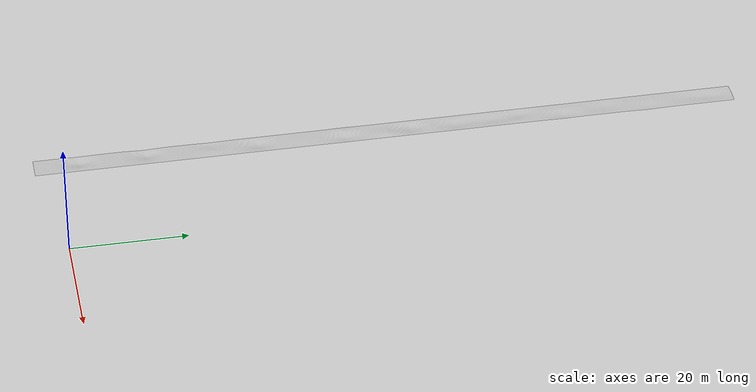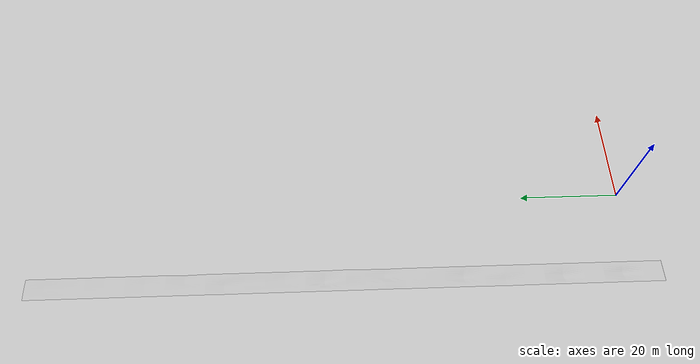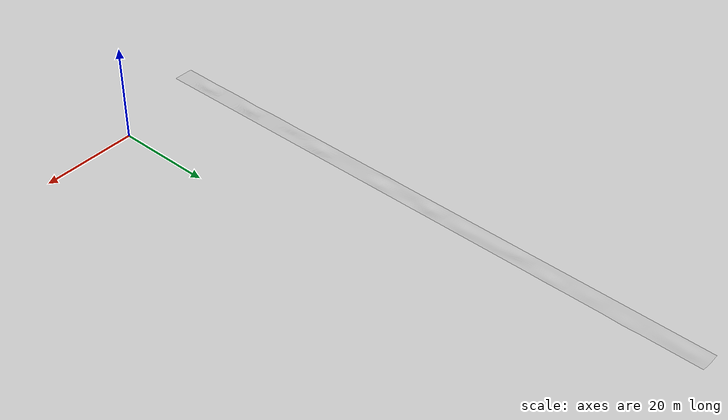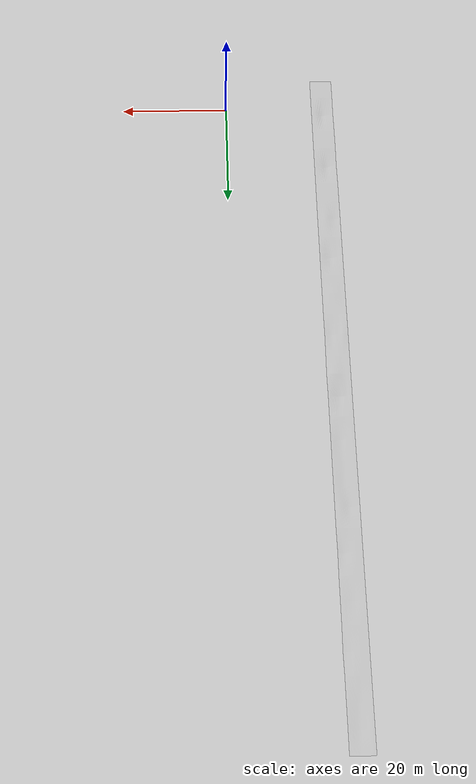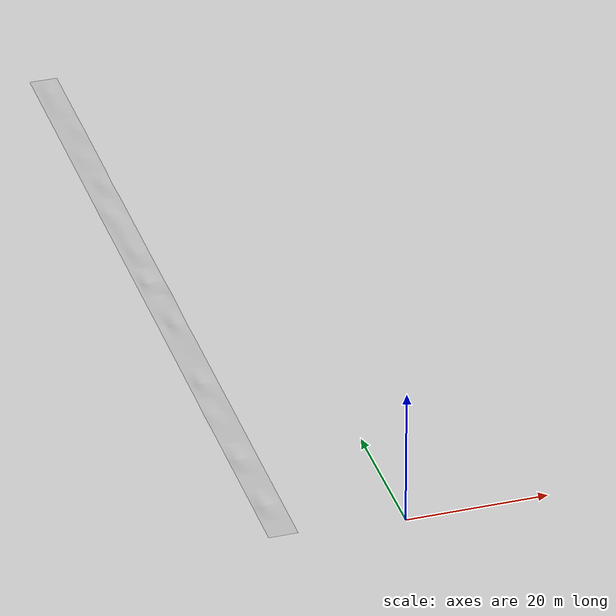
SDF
<?xml version="1.0" ?>
<sdf version="1.5">
  <model name="track_d_2">
    <pose>0 0 0 0 0 0</pose>
    <static>true</static>
    <link name="body">
      <visual name="visual">
        <geometry>
          <mesh><uri>model://track_2/media/track_2.dae</uri></mesh>
        </geometry>
	      <material>
          <script>
            <uri>model://track_2/media/scripts</uri>
            <uri>model://track_2/media/Textures</uri>
            <name>RepeatedGrass/Diffuse</name>
          </script>
        </material>
      </visual>
      <collision name="collision">
        <geometry>
          <mesh><uri>model://track_2/media/track_2.dae</uri></mesh>
        </geometry>
      </collision>
    </link>
  </model>
</sdf>
